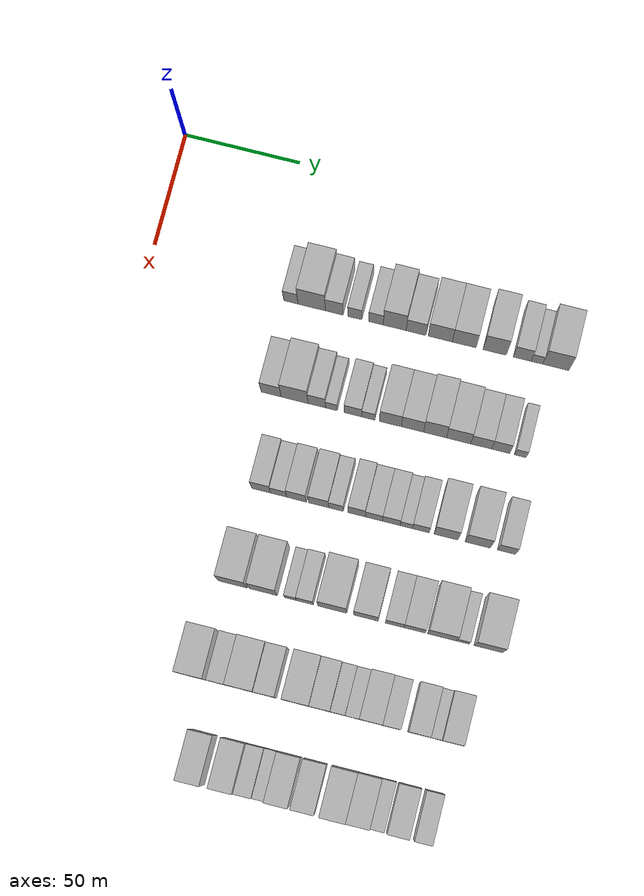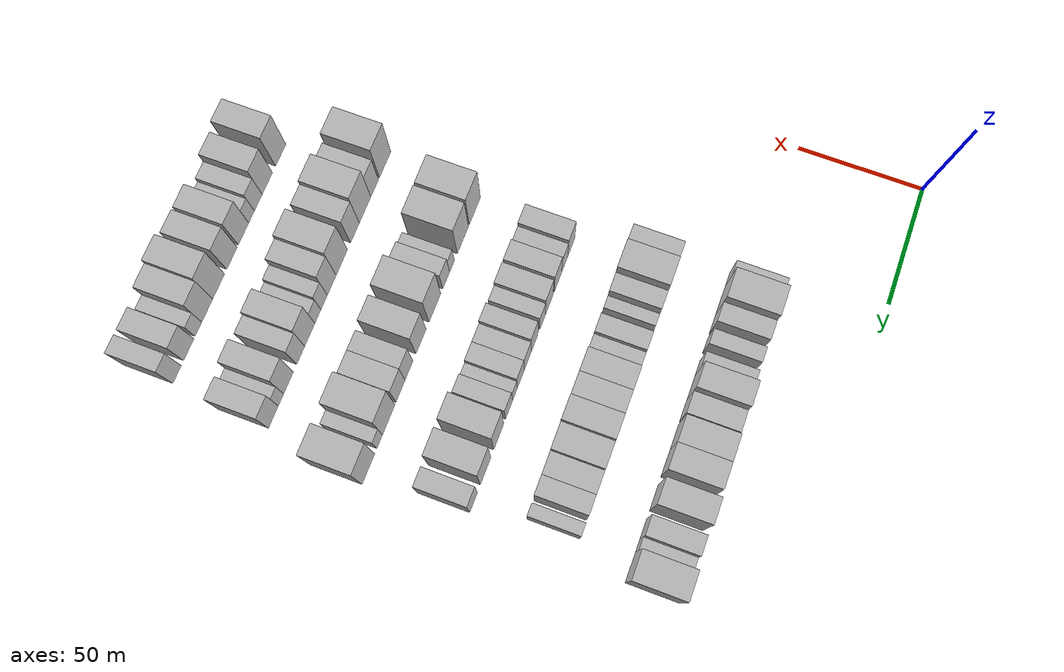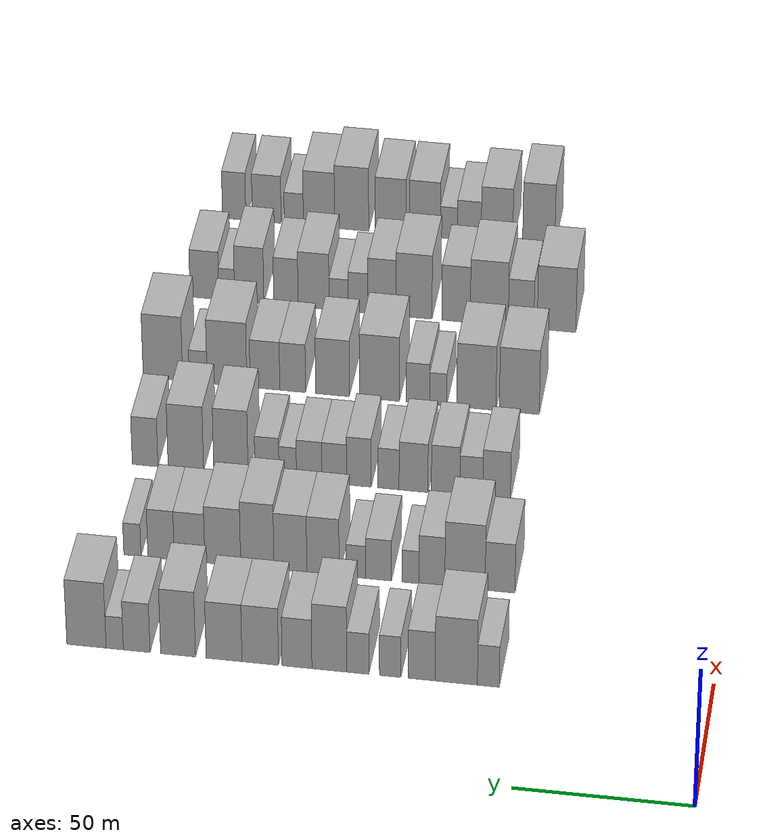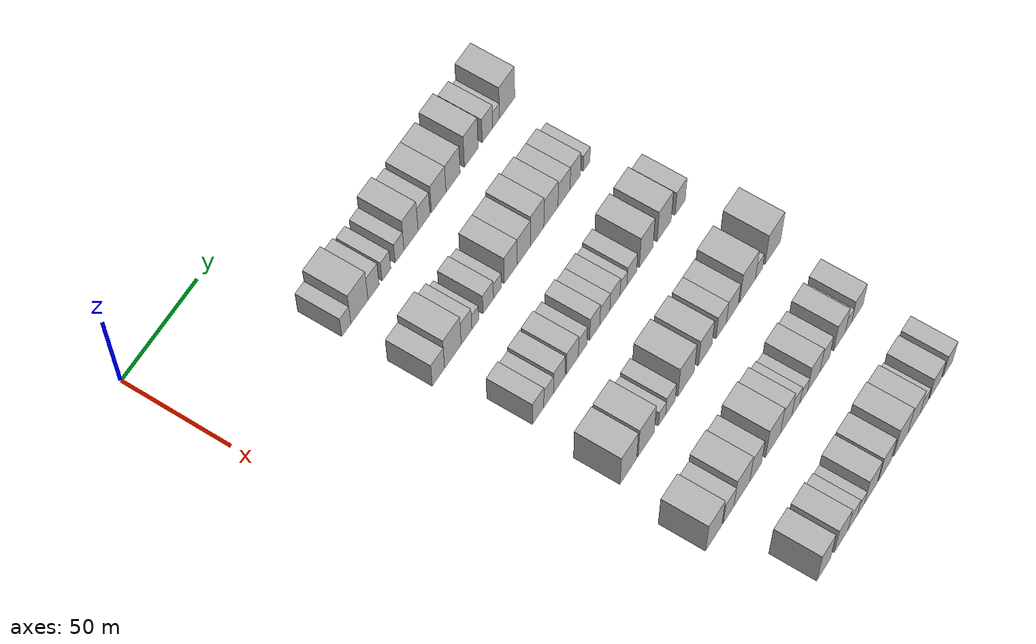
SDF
<sdf version="1.6">
 <world name="default">
  <model name="building_77">
   <static>1</static>
   <pose>50.0000 61.9833 0 0.000000 0.000000 0.000000</pose>
   <link name="link">
    <pose>0 0 7.50 0 0 0</pose>
    <collision name="collision"><geometry><box><size>20.0000 6.1368 15.0000</size></box></geometry></collision>
    <visual name="visual">
     <cast_shadows>0</cast_shadows>
     <geometry><box><size>20.0000 6.1368 15.0000</size></box></geometry>
     <material>
      <script>
       <uri>model://HANNAS_wall/materials/scripts</uri>
       <uri>model://HANNAS_wall/materials/textures</uri>
       <name>vrc/HANNAS_wall</name>
      </script>
     </material>
    </visual>
   </link>
  </model>
  <model name="building_78">
   <static>1</static>
   <pose>50.0000 70.9636 0 0.000000 0.000000 0.000000</pose>
   <link name="link">
    <pose>0 0 12.00 0 0 0</pose>
    <collision name="collision"><geometry><box><size>20.0000 11.8237 24.0000</size></box></geometry></collision>
    <visual name="visual">
     <cast_shadows>0</cast_shadows>
     <geometry><box><size>20.0000 11.8237 24.0000</size></box></geometry>
     <material>
      <script>
       <uri>model://HANNAS_wall/materials/scripts</uri>
       <uri>model://HANNAS_wall/materials/textures</uri>
       <name>vrc/HANNAS_wall</name>
      </script>
     </material>
    </visual>
   </link>
  </model>
  <model name="building_79">
   <static>1</static>
   <pose>50.0000 80.6957 0 0.000000 0.000000 0.000000</pose>
   <link name="link">
    <pose>0 0 9.00 0 0 0</pose>
    <collision name="collision"><geometry><box><size>20.0000 7.6407 18.0000</size></box></geometry></collision>
    <visual name="visual">
     <cast_shadows>0</cast_shadows>
     <geometry><box><size>20.0000 7.6407 18.0000</size></box></geometry>
     <material>
      <script>
       <uri>model://HANNAS_wall/materials/scripts</uri>
       <uri>model://HANNAS_wall/materials/textures</uri>
       <name>vrc/HANNAS_wall</name>
      </script>
     </material>
    </visual>
   </link>
  </model>
  <model name="building_80">
   <static>1</static>
   <pose>50.0000 89.5349 0 0.000000 0.000000 0.000000</pose>
   <link name="link">
    <pose>0 0 7.50 0 0 0</pose>
    <collision name="collision"><geometry><box><size>20.0000 6.0376 15.0000</size></box></geometry></collision>
    <visual name="visual">
     <cast_shadows>0</cast_shadows>
     <geometry><box><size>20.0000 6.0376 15.0000</size></box></geometry>
     <material>
      <script>
       <uri>model://HANNAS_wall/materials/scripts</uri>
       <uri>model://HANNAS_wall/materials/textures</uri>
       <name>vrc/HANNAS_wall</name>
      </script>
     </material>
    </visual>
   </link>
  </model>
  <model name="building_81">
   <static>1</static>
   <pose>50.0000 98.6666 0 0.000000 0.000000 0.000000</pose>
   <link name="link">
    <pose>0 0 7.50 0 0 0</pose>
    <collision name="collision"><geometry><box><size>20.0000 6.2260 15.0000</size></box></geometry></collision>
    <visual name="visual">
     <cast_shadows>0</cast_shadows>
     <geometry><box><size>20.0000 6.2260 15.0000</size></box></geometry>
     <material>
      <script>
       <uri>model://HANNAS_wall/materials/scripts</uri>
       <uri>model://HANNAS_wall/materials/textures</uri>
       <name>vrc/HANNAS_wall</name>
      </script>
     </material>
    </visual>
   </link>
  </model>
  <model name="building_82">
   <static>1</static>
   <pose>50.0000 106.6882 0 0.000000 0.000000 0.000000</pose>
   <link name="link">
    <pose>0 0 12.00 0 0 0</pose>
    <collision name="collision"><geometry><box><size>20.0000 9.8171 24.0000</size></box></geometry></collision>
    <visual name="visual">
     <cast_shadows>0</cast_shadows>
     <geometry><box><size>20.0000 9.8171 24.0000</size></box></geometry>
     <material>
      <script>
       <uri>model://HANNAS_wall/materials/scripts</uri>
       <uri>model://HANNAS_wall/materials/textures</uri>
       <name>vrc/HANNAS_wall</name>
      </script>
     </material>
    </visual>
   </link>
  </model>
  <model name="building_83">
   <static>1</static>
   <pose>50.0000 115.8136 0 0.000000 0.000000 0.000000</pose>
   <link name="link">
    <pose>0 0 9.00 0 0 0</pose>
    <collision name="collision"><geometry><box><size>20.0000 8.4338 18.0000</size></box></geometry></collision>
    <visual name="visual">
     <cast_shadows>0</cast_shadows>
     <geometry><box><size>20.0000 8.4338 18.0000</size></box></geometry>
     <material>
      <script>
       <uri>model://HANNAS_wall/materials/scripts</uri>
       <uri>model://HANNAS_wall/materials/textures</uri>
       <name>vrc/HANNAS_wall</name>
      </script>
     </material>
    </visual>
   </link>
  </model>
  <model name="building_84">
   <static>1</static>
   <pose>50.0000 126.2020 0 0.000000 0.000000 0.000000</pose>
   <link name="link">
    <pose>0 0 10.50 0 0 0</pose>
    <collision name="collision"><geometry><box><size>20.0000 10.3431 21.0000</size></box></geometry></collision>
    <visual name="visual">
     <cast_shadows>0</cast_shadows>
     <geometry><box><size>20.0000 10.3431 21.0000</size></box></geometry>
     <material>
      <script>
       <uri>model://HANNAS_wall/materials/scripts</uri>
       <uri>model://HANNAS_wall/materials/textures</uri>
       <name>vrc/HANNAS_wall</name>
      </script>
     </material>
    </visual>
   </link>
  </model>
  <model name="building_85">
   <static>1</static>
   <pose>50.0000 136.4455 0 0.000000 0.000000 0.000000</pose>
   <link name="link">
    <pose>0 0 10.50 0 0 0</pose>
    <collision name="collision"><geometry><box><size>20.0000 10.1439 21.0000</size></box></geometry></collision>
    <visual name="visual">
     <cast_shadows>0</cast_shadows>
     <geometry><box><size>20.0000 10.1439 21.0000</size></box></geometry>
     <material>
      <script>
       <uri>model://HANNAS_wall/materials/scripts</uri>
       <uri>model://HANNAS_wall/materials/textures</uri>
       <name>vrc/HANNAS_wall</name>
      </script>
     </material>
    </visual>
   </link>
  </model>
  <model name="building_86">
   <static>1</static>
   <pose>50.0000 149.4712 0 0.000000 0.000000 0.000000</pose>
   <link name="link">
    <pose>0 0 12.00 0 0 0</pose>
    <collision name="collision"><geometry><box><size>20.0000 9.9075 24.0000</size></box></geometry></collision>
    <visual name="visual">
     <cast_shadows>0</cast_shadows>
     <geometry><box><size>20.0000 9.9075 24.0000</size></box></geometry>
     <material>
      <script>
       <uri>model://HANNAS_wall/materials/scripts</uri>
       <uri>model://HANNAS_wall/materials/textures</uri>
       <name>vrc/HANNAS_wall</name>
      </script>
     </material>
    </visual>
   </link>
  </model>
  <model name="building_87">
   <static>1</static>
   <pose>50.0000 161.2207 0 0.000000 0.000000 0.000000</pose>
   <link name="link">
    <pose>0 0 9.00 0 0 0</pose>
    <collision name="collision"><geometry><box><size>20.0000 7.5915 18.0000</size></box></geometry></collision>
    <visual name="visual">
     <cast_shadows>0</cast_shadows>
     <geometry><box><size>20.0000 7.5915 18.0000</size></box></geometry>
     <material>
      <script>
       <uri>model://HANNAS_wall/materials/scripts</uri>
       <uri>model://HANNAS_wall/materials/textures</uri>
       <name>vrc/HANNAS_wall</name>
      </script>
     </material>
    </visual>
   </link>
  </model>
  <model name="building_88">
   <static>1</static>
   <pose>50.0000 167.4678 0 0.000000 0.000000 0.000000</pose>
   <link name="link">
    <pose>0 0 6.00 0 0 0</pose>
    <collision name="collision"><geometry><box><size>20.0000 4.9027 12.0000</size></box></geometry></collision>
    <visual name="visual">
     <cast_shadows>0</cast_shadows>
     <geometry><box><size>20.0000 4.9027 12.0000</size></box></geometry>
     <material>
      <script>
       <uri>model://HANNAS_wall/materials/scripts</uri>
       <uri>model://HANNAS_wall/materials/textures</uri>
       <name>vrc/HANNAS_wall</name>
      </script>
     </material>
    </visual>
   </link>
  </model>
  <model name="building_89">
   <static>1</static>
   <pose>50.0000 175.5026 0 0.000000 0.000000 0.000000</pose>
   <link name="link">
    <pose>0 0 12.00 0 0 0</pose>
    <collision name="collision"><geometry><box><size>20.0000 11.1671 24.0000</size></box></geometry></collision>
    <visual name="visual">
     <cast_shadows>0</cast_shadows>
     <geometry><box><size>20.0000 11.1671 24.0000</size></box></geometry>
     <material>
      <script>
       <uri>model://HANNAS_wall/materials/scripts</uri>
       <uri>model://HANNAS_wall/materials/textures</uri>
       <name>vrc/HANNAS_wall</name>
      </script>
     </material>
    </visual>
   </link>
  </model>
  <model name="building_209">
   <static>1</static>
   <pose>90.0000 64.0243 0 0.000000 0.000000 0.000000</pose>
   <link name="link">
    <pose>0 0 9.00 0 0 0</pose>
    <collision name="collision"><geometry><box><size>20.0000 8.5098 18.0000</size></box></geometry></collision>
    <visual name="visual">
     <cast_shadows>0</cast_shadows>
     <geometry><box><size>20.0000 8.5098 18.0000</size></box></geometry>
     <material>
      <script>
       <uri>model://HANNAS_wall/materials/scripts</uri>
       <uri>model://HANNAS_wall/materials/textures</uri>
       <name>vrc/HANNAS_wall</name>
      </script>
     </material>
    </visual>
   </link>
  </model>
  <model name="building_210">
   <static>1</static>
   <pose>90.0000 74.0491 0 0.000000 0.000000 0.000000</pose>
   <link name="link">
    <pose>0 0 12.00 0 0 0</pose>
    <collision name="collision"><geometry><box><size>20.0000 11.5398 24.0000</size></box></geometry></collision>
    <visual name="visual">
     <cast_shadows>0</cast_shadows>
     <geometry><box><size>20.0000 11.5398 24.0000</size></box></geometry>
     <material>
      <script>
       <uri>model://HANNAS_wall/materials/scripts</uri>
       <uri>model://HANNAS_wall/materials/textures</uri>
       <name>vrc/HANNAS_wall</name>
      </script>
     </material>
    </visual>
   </link>
  </model>
  <model name="building_211">
   <static>1</static>
   <pose>90.0000 83.5195 0 0.000000 0.000000 0.000000</pose>
   <link name="link">
    <pose>0 0 9.00 0 0 0</pose>
    <collision name="collision"><geometry><box><size>20.0000 7.4012 18.0000</size></box></geometry></collision>
    <visual name="visual">
     <cast_shadows>0</cast_shadows>
     <geometry><box><size>20.0000 7.4012 18.0000</size></box></geometry>
     <material>
      <script>
       <uri>model://HANNAS_wall/materials/scripts</uri>
       <uri>model://HANNAS_wall/materials/textures</uri>
       <name>vrc/HANNAS_wall</name>
      </script>
     </material>
    </visual>
   </link>
  </model>
  <model name="building_212">
   <static>1</static>
   <pose>90.0000 89.6690 0 0.000000 0.000000 0.000000</pose>
   <link name="link">
    <pose>0 0 6.00 0 0 0</pose>
    <collision name="collision"><geometry><box><size>20.0000 4.8977 12.0000</size></box></geometry></collision>
    <visual name="visual">
     <cast_shadows>0</cast_shadows>
     <geometry><box><size>20.0000 4.8977 12.0000</size></box></geometry>
     <material>
      <script>
       <uri>model://HANNAS_wall/materials/scripts</uri>
       <uri>model://HANNAS_wall/materials/textures</uri>
       <name>vrc/HANNAS_wall</name>
      </script>
     </material>
    </visual>
   </link>
  </model>
  <model name="building_213">
   <static>1</static>
   <pose>90.0000 98.8451 0 0.000000 0.000000 0.000000</pose>
   <link name="link">
    <pose>0 0 7.50 0 0 0</pose>
    <collision name="collision"><geometry><box><size>20.0000 7.4545 15.0000</size></box></geometry></collision>
    <visual name="visual">
     <cast_shadows>0</cast_shadows>
     <geometry><box><size>20.0000 7.4545 15.0000</size></box></geometry>
     <material>
      <script>
       <uri>model://HANNAS_wall/materials/scripts</uri>
       <uri>model://HANNAS_wall/materials/textures</uri>
       <name>vrc/HANNAS_wall</name>
      </script>
     </material>
    </visual>
   </link>
  </model>
  <model name="building_214">
   <static>1</static>
   <pose>90.0000 105.3590 0 0.000000 0.000000 0.000000</pose>
   <link name="link">
    <pose>0 0 6.00 0 0 0</pose>
    <collision name="collision"><geometry><box><size>20.0000 5.5733 12.0000</size></box></geometry></collision>
    <visual name="visual">
     <cast_shadows>0</cast_shadows>
     <geometry><box><size>20.0000 5.5733 12.0000</size></box></geometry>
     <material>
      <script>
       <uri>model://HANNAS_wall/materials/scripts</uri>
       <uri>model://HANNAS_wall/materials/textures</uri>
       <name>vrc/HANNAS_wall</name>
      </script>
     </material>
    </visual>
   </link>
  </model>
  <model name="building_215">
   <static>1</static>
   <pose>90.0000 114.7948 0 0.000000 0.000000 0.000000</pose>
   <link name="link">
    <pose>0 0 10.50 0 0 0</pose>
    <collision name="collision"><geometry><box><size>20.0000 9.2982 21.0000</size></box></geometry></collision>
    <visual name="visual">
     <cast_shadows>0</cast_shadows>
     <geometry><box><size>20.0000 9.2982 21.0000</size></box></geometry>
     <material>
      <script>
       <uri>model://HANNAS_wall/materials/scripts</uri>
       <uri>model://HANNAS_wall/materials/textures</uri>
       <name>vrc/HANNAS_wall</name>
      </script>
     </material>
    </visual>
   </link>
  </model>
  <model name="building_216">
   <static>1</static>
   <pose>90.0000 124.1736 0 0.000000 0.000000 0.000000</pose>
   <link name="link">
    <pose>0 0 10.50 0 0 0</pose>
    <collision name="collision"><geometry><box><size>20.0000 9.4594 21.0000</size></box></geometry></collision>
    <visual name="visual">
     <cast_shadows>0</cast_shadows>
     <geometry><box><size>20.0000 9.4594 21.0000</size></box></geometry>
     <material>
      <script>
       <uri>model://HANNAS_wall/materials/scripts</uri>
       <uri>model://HANNAS_wall/materials/textures</uri>
       <name>vrc/HANNAS_wall</name>
      </script>
     </material>
    </visual>
   </link>
  </model>
  <model name="building_217">
   <static>1</static>
   <pose>90.0000 133.7202 0 0.000000 0.000000 0.000000</pose>
   <link name="link">
    <pose>0 0 12.00 0 0 0</pose>
    <collision name="collision"><geometry><box><size>20.0000 9.6339 24.0000</size></box></geometry></collision>
    <visual name="visual">
     <cast_shadows>0</cast_shadows>
     <geometry><box><size>20.0000 9.6339 24.0000</size></box></geometry>
     <material>
      <script>
       <uri>model://HANNAS_wall/materials/scripts</uri>
       <uri>model://HANNAS_wall/materials/textures</uri>
       <name>vrc/HANNAS_wall</name>
      </script>
     </material>
    </visual>
   </link>
  </model>
  <model name="building_218">
   <static>1</static>
   <pose>90.0000 143.7049 0 0.000000 0.000000 0.000000</pose>
   <link name="link">
    <pose>0 0 10.50 0 0 0</pose>
    <collision name="collision"><geometry><box><size>20.0000 10.3356 21.0000</size></box></geometry></collision>
    <visual name="visual">
     <cast_shadows>0</cast_shadows>
     <geometry><box><size>20.0000 10.3356 21.0000</size></box></geometry>
     <material>
      <script>
       <uri>model://HANNAS_wall/materials/scripts</uri>
       <uri>model://HANNAS_wall/materials/textures</uri>
       <name>vrc/HANNAS_wall</name>
      </script>
     </material>
    </visual>
   </link>
  </model>
  <model name="building_219">
   <static>1</static>
   <pose>90.0000 153.2958 0 0.000000 0.000000 0.000000</pose>
   <link name="link">
    <pose>0 0 9.00 0 0 0</pose>
    <collision name="collision"><geometry><box><size>20.0000 8.8462 18.0000</size></box></geometry></collision>
    <visual name="visual">
     <cast_shadows>0</cast_shadows>
     <geometry><box><size>20.0000 8.8462 18.0000</size></box></geometry>
     <material>
      <script>
       <uri>model://HANNAS_wall/materials/scripts</uri>
       <uri>model://HANNAS_wall/materials/textures</uri>
       <name>vrc/HANNAS_wall</name>
      </script>
     </material>
    </visual>
   </link>
  </model>
  <model name="building_220">
   <static>1</static>
   <pose>90.0000 161.5428 0 0.000000 0.000000 0.000000</pose>
   <link name="link">
    <pose>0 0 9.00 0 0 0</pose>
    <collision name="collision"><geometry><box><size>20.0000 7.6477 18.0000</size></box></geometry></collision>
    <visual name="visual">
     <cast_shadows>0</cast_shadows>
     <geometry><box><size>20.0000 7.6477 18.0000</size></box></geometry>
     <material>
      <script>
       <uri>model://HANNAS_wall/materials/scripts</uri>
       <uri>model://HANNAS_wall/materials/textures</uri>
       <name>vrc/HANNAS_wall</name>
      </script>
     </material>
    </visual>
   </link>
  </model>
  <model name="building_221">
   <static>1</static>
   <pose>90.0000 169.8466 0 0.000000 0.000000 0.000000</pose>
   <link name="link">
    <pose>0 0 6.00 0 0 0</pose>
    <collision name="collision"><geometry><box><size>20.0000 4.9598 12.0000</size></box></geometry></collision>
    <visual name="visual">
     <cast_shadows>0</cast_shadows>
     <geometry><box><size>20.0000 4.9598 12.0000</size></box></geometry>
     <material>
      <script>
       <uri>model://HANNAS_wall/materials/scripts</uri>
       <uri>model://HANNAS_wall/materials/textures</uri>
       <name>vrc/HANNAS_wall</name>
      </script>
     </material>
    </visual>
   </link>
  </model>
  <model name="building_352">
   <static>1</static>
   <pose>130.0000 70.3549 0 0.000000 0.000000 0.000000</pose>
   <link name="link">
    <pose>0 0 9.00 0 0 0</pose>
    <collision name="collision"><geometry><box><size>20.0000 7.9954 18.0000</size></box></geometry></collision>
    <visual name="visual">
     <cast_shadows>0</cast_shadows>
     <geometry><box><size>20.0000 7.9954 18.0000</size></box></geometry>
     <material>
      <script>
       <uri>model://HANNAS_wall/materials/scripts</uri>
       <uri>model://HANNAS_wall/materials/textures</uri>
       <name>vrc/HANNAS_wall</name>
      </script>
     </material>
    </visual>
   </link>
  </model>
  <model name="building_353">
   <static>1</static>
   <pose>130.0000 77.7285 0 0.000000 0.000000 0.000000</pose>
   <link name="link">
    <pose>0 0 7.50 0 0 0</pose>
    <collision name="collision"><geometry><box><size>20.0000 6.7518 15.0000</size></box></geometry></collision>
    <visual name="visual">
     <cast_shadows>0</cast_shadows>
     <geometry><box><size>20.0000 6.7518 15.0000</size></box></geometry>
     <material>
      <script>
       <uri>model://HANNAS_wall/materials/scripts</uri>
       <uri>model://HANNAS_wall/materials/textures</uri>
       <name>vrc/HANNAS_wall</name>
      </script>
     </material>
    </visual>
   </link>
  </model>
  <model name="building_354">
   <static>1</static>
   <pose>130.0000 85.2510 0 0.000000 0.000000 0.000000</pose>
   <link name="link">
    <pose>0 0 9.00 0 0 0</pose>
    <collision name="collision"><geometry><box><size>20.0000 8.2933 18.0000</size></box></geometry></collision>
    <visual name="visual">
     <cast_shadows>0</cast_shadows>
     <geometry><box><size>20.0000 8.2933 18.0000</size></box></geometry>
     <material>
      <script>
       <uri>model://HANNAS_wall/materials/scripts</uri>
       <uri>model://HANNAS_wall/materials/textures</uri>
       <name>vrc/HANNAS_wall</name>
      </script>
     </material>
    </visual>
   </link>
  </model>
  <model name="building_355">
   <static>1</static>
   <pose>130.0000 94.6221 0 0.000000 0.000000 0.000000</pose>
   <link name="link">
    <pose>0 0 9.00 0 0 0</pose>
    <collision name="collision"><geometry><box><size>20.0000 8.4489 18.0000</size></box></geometry></collision>
    <visual name="visual">
     <cast_shadows>0</cast_shadows>
     <geometry><box><size>20.0000 8.4489 18.0000</size></box></geometry>
     <material>
      <script>
       <uri>model://HANNAS_wall/materials/scripts</uri>
       <uri>model://HANNAS_wall/materials/textures</uri>
       <name>vrc/HANNAS_wall</name>
      </script>
     </material>
    </visual>
   </link>
  </model>
  <model name="building_356">
   <static>1</static>
   <pose>130.0000 101.9207 0 0.000000 0.000000 0.000000</pose>
   <link name="link">
    <pose>0 0 7.50 0 0 0</pose>
    <collision name="collision"><geometry><box><size>20.0000 6.1483 15.0000</size></box></geometry></collision>
    <visual name="visual">
     <cast_shadows>0</cast_shadows>
     <geometry><box><size>20.0000 6.1483 15.0000</size></box></geometry>
     <material>
      <script>
       <uri>model://HANNAS_wall/materials/scripts</uri>
       <uri>model://HANNAS_wall/materials/textures</uri>
       <name>vrc/HANNAS_wall</name>
      </script>
     </material>
    </visual>
   </link>
  </model>
  <model name="building_357">
   <static>1</static>
   <pose>130.0000 110.6044 0 0.000000 0.000000 0.000000</pose>
   <link name="link">
    <pose>0 0 9.00 0 0 0</pose>
    <collision name="collision"><geometry><box><size>20.0000 7.2192 18.0000</size></box></geometry></collision>
    <visual name="visual">
     <cast_shadows>0</cast_shadows>
     <geometry><box><size>20.0000 7.2192 18.0000</size></box></geometry>
     <material>
      <script>
       <uri>model://HANNAS_wall/materials/scripts</uri>
       <uri>model://HANNAS_wall/materials/textures</uri>
       <name>vrc/HANNAS_wall</name>
      </script>
     </material>
    </visual>
   </link>
  </model>
  <model name="building_358">
   <static>1</static>
   <pose>130.0000 117.8459 0 0.000000 0.000000 0.000000</pose>
   <link name="link">
    <pose>0 0 7.50 0 0 0</pose>
    <collision name="collision"><geometry><box><size>20.0000 7.2637 15.0000</size></box></geometry></collision>
    <visual name="visual">
     <cast_shadows>0</cast_shadows>
     <geometry><box><size>20.0000 7.2637 15.0000</size></box></geometry>
     <material>
      <script>
       <uri>model://HANNAS_wall/materials/scripts</uri>
       <uri>model://HANNAS_wall/materials/textures</uri>
       <name>vrc/HANNAS_wall</name>
      </script>
     </material>
    </visual>
   </link>
  </model>
  <model name="building_359">
   <static>1</static>
   <pose>130.0000 125.1880 0 0.000000 0.000000 0.000000</pose>
   <link name="link">
    <pose>0 0 7.50 0 0 0</pose>
    <collision name="collision"><geometry><box><size>20.0000 7.4205 15.0000</size></box></geometry></collision>
    <visual name="visual">
     <cast_shadows>0</cast_shadows>
     <geometry><box><size>20.0000 7.4205 15.0000</size></box></geometry>
     <material>
      <script>
       <uri>model://HANNAS_wall/materials/scripts</uri>
       <uri>model://HANNAS_wall/materials/textures</uri>
       <name>vrc/HANNAS_wall</name>
      </script>
     </material>
    </visual>
   </link>
  </model>
  <model name="building_360">
   <static>1</static>
   <pose>130.0000 131.4701 0 0.000000 0.000000 0.000000</pose>
   <link name="link">
    <pose>0 0 6.00 0 0 0</pose>
    <collision name="collision"><geometry><box><size>20.0000 5.1437 12.0000</size></box></geometry></collision>
    <visual name="visual">
     <cast_shadows>0</cast_shadows>
     <geometry><box><size>20.0000 5.1437 12.0000</size></box></geometry>
     <material>
      <script>
       <uri>model://HANNAS_wall/materials/scripts</uri>
       <uri>model://HANNAS_wall/materials/textures</uri>
       <name>vrc/HANNAS_wall</name>
      </script>
     </material>
    </visual>
   </link>
  </model>
  <model name="building_361">
   <static>1</static>
   <pose>130.0000 137.5808 0 0.000000 0.000000 0.000000</pose>
   <link name="link">
    <pose>0 0 7.50 0 0 0</pose>
    <collision name="collision"><geometry><box><size>20.0000 7.0778 15.0000</size></box></geometry></collision>
    <visual name="visual">
     <cast_shadows>0</cast_shadows>
     <geometry><box><size>20.0000 7.0778 15.0000</size></box></geometry>
     <material>
      <script>
       <uri>model://HANNAS_wall/materials/scripts</uri>
       <uri>model://HANNAS_wall/materials/textures</uri>
       <name>vrc/HANNAS_wall</name>
      </script>
     </material>
    </visual>
   </link>
  </model>
  <model name="building_362">
   <static>1</static>
   <pose>130.0000 148.1693 0 0.000000 0.000000 0.000000</pose>
   <link name="link">
    <pose>0 0 12.00 0 0 0</pose>
    <collision name="collision"><geometry><box><size>20.0000 10.0994 24.0000</size></box></geometry></collision>
    <visual name="visual">
     <cast_shadows>0</cast_shadows>
     <geometry><box><size>20.0000 10.0994 24.0000</size></box></geometry>
     <material>
      <script>
       <uri>model://HANNAS_wall/materials/scripts</uri>
       <uri>model://HANNAS_wall/materials/textures</uri>
       <name>vrc/HANNAS_wall</name>
      </script>
     </material>
    </visual>
   </link>
  </model>
  <model name="building_363">
   <static>1</static>
   <pose>130.0000 161.4615 0 0.000000 0.000000 0.000000</pose>
   <link name="link">
    <pose>0 0 12.00 0 0 0</pose>
    <collision name="collision"><geometry><box><size>20.0000 10.4849 24.0000</size></box></geometry></collision>
    <visual name="visual">
     <cast_shadows>0</cast_shadows>
     <geometry><box><size>20.0000 10.4849 24.0000</size></box></geometry>
     <material>
      <script>
       <uri>model://HANNAS_wall/materials/scripts</uri>
       <uri>model://HANNAS_wall/materials/textures</uri>
       <name>vrc/HANNAS_wall</name>
      </script>
     </material>
    </visual>
   </link>
  </model>
  <model name="building_364">
   <static>1</static>
   <pose>130.0000 173.4905 0 0.000000 0.000000 0.000000</pose>
   <link name="link">
    <pose>0 0 9.00 0 0 0</pose>
    <collision name="collision"><geometry><box><size>20.0000 7.5732 18.0000</size></box></geometry></collision>
    <visual name="visual">
     <cast_shadows>0</cast_shadows>
     <geometry><box><size>20.0000 7.5732 18.0000</size></box></geometry>
     <material>
      <script>
       <uri>model://HANNAS_wall/materials/scripts</uri>
       <uri>model://HANNAS_wall/materials/textures</uri>
       <name>vrc/HANNAS_wall</name>
      </script>
     </material>
    </visual>
   </link>
  </model>
  <model name="building_493">
   <static>1</static>
   <pose>170.0000 68.9967 0 0.000000 0.000000 0.000000</pose>
   <link name="link">
    <pose>0 0 12.00 0 0 0</pose>
    <collision name="collision"><geometry><box><size>20.0000 11.8665 24.0000</size></box></geometry></collision>
    <visual name="visual">
     <cast_shadows>0</cast_shadows>
     <geometry><box><size>20.0000 11.8665 24.0000</size></box></geometry>
     <material>
      <script>
       <uri>model://HANNAS_wall/materials/scripts</uri>
       <uri>model://HANNAS_wall/materials/textures</uri>
       <name>vrc/HANNAS_wall</name>
      </script>
     </material>
    </visual>
   </link>
  </model>
  <model name="building_494">
   <static>1</static>
   <pose>170.0000 81.7453 0 0.000000 0.000000 0.000000</pose>
   <link name="link">
    <pose>0 0 12.00 0 0 0</pose>
    <collision name="collision"><geometry><box><size>20.0000 11.6307 24.0000</size></box></geometry></collision>
    <visual name="visual">
     <cast_shadows>0</cast_shadows>
     <geometry><box><size>20.0000 11.6307 24.0000</size></box></geometry>
     <material>
      <script>
       <uri>model://HANNAS_wall/materials/scripts</uri>
       <uri>model://HANNAS_wall/materials/textures</uri>
       <name>vrc/HANNAS_wall</name>
      </script>
     </material>
    </visual>
   </link>
  </model>
  <model name="building_495">
   <static>1</static>
   <pose>170.0000 93.1016 0 0.000000 0.000000 0.000000</pose>
   <link name="link">
    <pose>0 0 6.00 0 0 0</pose>
    <collision name="collision"><geometry><box><size>20.0000 5.0820 12.0000</size></box></geometry></collision>
    <visual name="visual">
     <cast_shadows>0</cast_shadows>
     <geometry><box><size>20.0000 5.0820 12.0000</size></box></geometry>
     <material>
      <script>
       <uri>model://HANNAS_wall/materials/scripts</uri>
       <uri>model://HANNAS_wall/materials/textures</uri>
       <name>vrc/HANNAS_wall</name>
      </script>
     </material>
    </visual>
   </link>
  </model>
  <model name="building_496">
   <static>1</static>
   <pose>170.0000 99.1411 0 0.000000 0.000000 0.000000</pose>
   <link name="link">
    <pose>0 0 7.50 0 0 0</pose>
    <collision name="collision"><geometry><box><size>20.0000 6.9969 15.0000</size></box></geometry></collision>
    <visual name="visual">
     <cast_shadows>0</cast_shadows>
     <geometry><box><size>20.0000 6.9969 15.0000</size></box></geometry>
     <material>
      <script>
       <uri>model://HANNAS_wall/materials/scripts</uri>
       <uri>model://HANNAS_wall/materials/textures</uri>
       <name>vrc/HANNAS_wall</name>
      </script>
     </material>
    </visual>
   </link>
  </model>
  <model name="building_497">
   <static>1</static>
   <pose>170.0000 110.6026 0 0.000000 0.000000 0.000000</pose>
   <link name="link">
    <pose>0 0 12.00 0 0 0</pose>
    <collision name="collision"><geometry><box><size>20.0000 11.9261 24.0000</size></box></geometry></collision>
    <visual name="visual">
     <cast_shadows>0</cast_shadows>
     <geometry><box><size>20.0000 11.9261 24.0000</size></box></geometry>
     <material>
      <script>
       <uri>model://HANNAS_wall/materials/scripts</uri>
       <uri>model://HANNAS_wall/materials/textures</uri>
       <name>vrc/HANNAS_wall</name>
      </script>
     </material>
    </visual>
   </link>
  </model>
  <model name="building_498">
   <static>1</static>
   <pose>170.0000 124.6158 0 0.000000 0.000000 0.000000</pose>
   <link name="link">
    <pose>0 0 10.50 0 0 0</pose>
    <collision name="collision"><geometry><box><size>20.0000 10.1004 21.0000</size></box></geometry></collision>
    <visual name="visual">
     <cast_shadows>0</cast_shadows>
     <geometry><box><size>20.0000 10.1004 21.0000</size></box></geometry>
     <material>
      <script>
       <uri>model://HANNAS_wall/materials/scripts</uri>
       <uri>model://HANNAS_wall/materials/textures</uri>
       <name>vrc/HANNAS_wall</name>
      </script>
     </material>
    </visual>
   </link>
  </model>
  <model name="building_499">
   <static>1</static>
   <pose>170.0000 136.5290 0 0.000000 0.000000 0.000000</pose>
   <link name="link">
    <pose>0 0 9.00 0 0 0</pose>
    <collision name="collision"><geometry><box><size>20.0000 7.7260 18.0000</size></box></geometry></collision>
    <visual name="visual">
     <cast_shadows>0</cast_shadows>
     <geometry><box><size>20.0000 7.7260 18.0000</size></box></geometry>
     <material>
      <script>
       <uri>model://HANNAS_wall/materials/scripts</uri>
       <uri>model://HANNAS_wall/materials/textures</uri>
       <name>vrc/HANNAS_wall</name>
      </script>
     </material>
    </visual>
   </link>
  </model>
  <model name="building_500">
   <static>1</static>
   <pose>170.0000 144.8285 0 0.000000 0.000000 0.000000</pose>
   <link name="link">
    <pose>0 0 9.00 0 0 0</pose>
    <collision name="collision"><geometry><box><size>20.0000 8.8732 18.0000</size></box></geometry></collision>
    <visual name="visual">
     <cast_shadows>0</cast_shadows>
     <geometry><box><size>20.0000 8.8732 18.0000</size></box></geometry>
     <material>
      <script>
       <uri>model://HANNAS_wall/materials/scripts</uri>
       <uri>model://HANNAS_wall/materials/textures</uri>
       <name>vrc/HANNAS_wall</name>
      </script>
     </material>
    </visual>
   </link>
  </model>
  <model name="building_501">
   <static>1</static>
   <pose>170.0000 156.2308 0 0.000000 0.000000 0.000000</pose>
   <link name="link">
    <pose>0 0 12.00 0 0 0</pose>
    <collision name="collision"><geometry><box><size>20.0000 11.9314 24.0000</size></box></geometry></collision>
    <visual name="visual">
     <cast_shadows>0</cast_shadows>
     <geometry><box><size>20.0000 11.9314 24.0000</size></box></geometry>
     <material>
      <script>
       <uri>model://HANNAS_wall/materials/scripts</uri>
       <uri>model://HANNAS_wall/materials/textures</uri>
       <name>vrc/HANNAS_wall</name>
      </script>
     </material>
    </visual>
   </link>
  </model>
  <model name="building_502">
   <static>1</static>
   <pose>170.0000 164.8690 0 0.000000 0.000000 0.000000</pose>
   <link name="link">
    <pose>0 0 6.00 0 0 0</pose>
    <collision name="collision"><geometry><box><size>20.0000 5.3451 12.0000</size></box></geometry></collision>
    <visual name="visual">
     <cast_shadows>0</cast_shadows>
     <geometry><box><size>20.0000 5.3451 12.0000</size></box></geometry>
     <material>
      <script>
       <uri>model://HANNAS_wall/materials/scripts</uri>
       <uri>model://HANNAS_wall/materials/textures</uri>
       <name>vrc/HANNAS_wall</name>
      </script>
     </material>
    </visual>
   </link>
  </model>
  <model name="building_503">
   <static>1</static>
   <pose>170.0000 175.4649 0 0.000000 0.000000 0.000000</pose>
   <link name="link">
    <pose>0 0 12.00 0 0 0</pose>
    <collision name="collision"><geometry><box><size>20.0000 11.8467 24.0000</size></box></geometry></collision>
    <visual name="visual">
     <cast_shadows>0</cast_shadows>
     <geometry><box><size>20.0000 11.8467 24.0000</size></box></geometry>
     <material>
      <script>
       <uri>model://HANNAS_wall/materials/scripts</uri>
       <uri>model://HANNAS_wall/materials/textures</uri>
       <name>vrc/HANNAS_wall</name>
      </script>
     </material>
    </visual>
   </link>
  </model>
  <model name="building_618">
   <static>1</static>
   <pose>210.0000 63.0101 0 0.000000 0.000000 0.000000</pose>
   <link name="link">
    <pose>0 0 12.00 0 0 0</pose>
    <collision name="collision"><geometry><box><size>20.0000 11.6503 24.0000</size></box></geometry></collision>
    <visual name="visual">
     <cast_shadows>0</cast_shadows>
     <geometry><box><size>20.0000 11.6503 24.0000</size></box></geometry>
     <material>
      <script>
       <uri>model://HANNAS_wall/materials/scripts</uri>
       <uri>model://HANNAS_wall/materials/textures</uri>
       <name>vrc/HANNAS_wall</name>
      </script>
     </material>
    </visual>
   </link>
  </model>
  <model name="building_619">
   <static>1</static>
   <pose>210.0000 73.6987 0 0.000000 0.000000 0.000000</pose>
   <link name="link">
    <pose>0 0 9.00 0 0 0</pose>
    <collision name="collision"><geometry><box><size>20.0000 7.7267 18.0000</size></box></geometry></collision>
    <visual name="visual">
     <cast_shadows>0</cast_shadows>
     <geometry><box><size>20.0000 7.7267 18.0000</size></box></geometry>
     <material>
      <script>
       <uri>model://HANNAS_wall/materials/scripts</uri>
       <uri>model://HANNAS_wall/materials/textures</uri>
       <name>vrc/HANNAS_wall</name>
      </script>
     </material>
    </visual>
   </link>
  </model>
  <model name="building_620">
   <static>1</static>
   <pose>210.0000 83.3041 0 0.000000 0.000000 0.000000</pose>
   <link name="link">
    <pose>0 0 12.00 0 0 0</pose>
    <collision name="collision"><geometry><box><size>20.0000 11.4842 24.0000</size></box></geometry></collision>
    <visual name="visual">
     <cast_shadows>0</cast_shadows>
     <geometry><box><size>20.0000 11.4842 24.0000</size></box></geometry>
     <material>
      <script>
       <uri>model://HANNAS_wall/materials/scripts</uri>
       <uri>model://HANNAS_wall/materials/textures</uri>
       <name>vrc/HANNAS_wall</name>
      </script>
     </material>
    </visual>
   </link>
  </model>
  <model name="building_621">
   <static>1</static>
   <pose>210.0000 93.3498 0 0.000000 0.000000 0.000000</pose>
   <link name="link">
    <pose>0 0 10.50 0 0 0</pose>
    <collision name="collision"><geometry><box><size>20.0000 8.6072 21.0000</size></box></geometry></collision>
    <visual name="visual">
     <cast_shadows>0</cast_shadows>
     <geometry><box><size>20.0000 8.6072 21.0000</size></box></geometry>
     <material>
      <script>
       <uri>model://HANNAS_wall/materials/scripts</uri>
       <uri>model://HANNAS_wall/materials/textures</uri>
       <name>vrc/HANNAS_wall</name>
      </script>
     </material>
    </visual>
   </link>
  </model>
  <model name="building_622">
   <static>1</static>
   <pose>210.0000 106.1419 0 0.000000 0.000000 0.000000</pose>
   <link name="link">
    <pose>0 0 12.00 0 0 0</pose>
    <collision name="collision"><geometry><box><size>20.0000 10.9770 24.0000</size></box></geometry></collision>
    <visual name="visual">
     <cast_shadows>0</cast_shadows>
     <geometry><box><size>20.0000 10.9770 24.0000</size></box></geometry>
     <material>
      <script>
       <uri>model://HANNAS_wall/materials/scripts</uri>
       <uri>model://HANNAS_wall/materials/textures</uri>
       <name>vrc/HANNAS_wall</name>
      </script>
     </material>
    </visual>
   </link>
  </model>
  <model name="building_623">
   <static>1</static>
   <pose>210.0000 115.8581 0 0.000000 0.000000 0.000000</pose>
   <link name="link">
    <pose>0 0 10.50 0 0 0</pose>
    <collision name="collision"><geometry><box><size>20.0000 8.4554 21.0000</size></box></geometry></collision>
    <visual name="visual">
     <cast_shadows>0</cast_shadows>
     <geometry><box><size>20.0000 8.4554 21.0000</size></box></geometry>
     <material>
      <script>
       <uri>model://HANNAS_wall/materials/scripts</uri>
       <uri>model://HANNAS_wall/materials/textures</uri>
       <name>vrc/HANNAS_wall</name>
      </script>
     </material>
    </visual>
   </link>
  </model>
  <model name="building_624">
   <static>1</static>
   <pose>210.0000 123.1290 0 0.000000 0.000000 0.000000</pose>
   <link name="link">
    <pose>0 0 7.50 0 0 0</pose>
    <collision name="collision"><geometry><box><size>20.0000 6.0864 15.0000</size></box></geometry></collision>
    <visual name="visual">
     <cast_shadows>0</cast_shadows>
     <geometry><box><size>20.0000 6.0864 15.0000</size></box></geometry>
     <material>
      <script>
       <uri>model://HANNAS_wall/materials/scripts</uri>
       <uri>model://HANNAS_wall/materials/textures</uri>
       <name>vrc/HANNAS_wall</name>
      </script>
     </material>
    </visual>
   </link>
  </model>
  <model name="building_625">
   <static>1</static>
   <pose>210.0000 129.0493 0 0.000000 0.000000 0.000000</pose>
   <link name="link">
    <pose>0 0 6.00 0 0 0</pose>
    <collision name="collision"><geometry><box><size>20.0000 5.7543 12.0000</size></box></geometry></collision>
    <visual name="visual">
     <cast_shadows>0</cast_shadows>
     <geometry><box><size>20.0000 5.7543 12.0000</size></box></geometry>
     <material>
      <script>
       <uri>model://HANNAS_wall/materials/scripts</uri>
       <uri>model://HANNAS_wall/materials/textures</uri>
       <name>vrc/HANNAS_wall</name>
      </script>
     </material>
    </visual>
   </link>
  </model>
  <model name="building_626">
   <static>1</static>
   <pose>210.0000 136.6495 0 0.000000 0.000000 0.000000</pose>
   <link name="link">
    <pose>0 0 10.50 0 0 0</pose>
    <collision name="collision"><geometry><box><size>20.0000 9.4461 21.0000</size></box></geometry></collision>
    <visual name="visual">
     <cast_shadows>0</cast_shadows>
     <geometry><box><size>20.0000 9.4461 21.0000</size></box></geometry>
     <material>
      <script>
       <uri>model://HANNAS_wall/materials/scripts</uri>
       <uri>model://HANNAS_wall/materials/textures</uri>
       <name>vrc/HANNAS_wall</name>
      </script>
     </material>
    </visual>
   </link>
  </model>
  <model name="building_627">
   <static>1</static>
   <pose>210.0000 145.0912 0 0.000000 0.000000 0.000000</pose>
   <link name="link">
    <pose>0 0 9.00 0 0 0</pose>
    <collision name="collision"><geometry><box><size>20.0000 7.4373 18.0000</size></box></geometry></collision>
    <visual name="visual">
     <cast_shadows>0</cast_shadows>
     <geometry><box><size>20.0000 7.4373 18.0000</size></box></geometry>
     <material>
      <script>
       <uri>model://HANNAS_wall/materials/scripts</uri>
       <uri>model://HANNAS_wall/materials/textures</uri>
       <name>vrc/HANNAS_wall</name>
      </script>
     </material>
    </visual>
   </link>
  </model>
  <model name="building_628">
   <static>1</static>
   <pose>210.0000 156.2733 0 0.000000 0.000000 0.000000</pose>
   <link name="link">
    <pose>0 0 10.50 0 0 0</pose>
    <collision name="collision"><geometry><box><size>20.0000 8.9269 21.0000</size></box></geometry></collision>
    <visual name="visual">
     <cast_shadows>0</cast_shadows>
     <geometry><box><size>20.0000 8.9269 21.0000</size></box></geometry>
     <material>
      <script>
       <uri>model://HANNAS_wall/materials/scripts</uri>
       <uri>model://HANNAS_wall/materials/textures</uri>
       <name>vrc/HANNAS_wall</name>
      </script>
     </material>
    </visual>
   </link>
  </model>
  <model name="building_629">
   <static>1</static>
   <pose>210.0000 163.1485 0 0.000000 0.000000 0.000000</pose>
   <link name="link">
    <pose>0 0 6.00 0 0 0</pose>
    <collision name="collision"><geometry><box><size>20.0000 4.8233 12.0000</size></box></geometry></collision>
    <visual name="visual">
     <cast_shadows>0</cast_shadows>
     <geometry><box><size>20.0000 4.8233 12.0000</size></box></geometry>
     <material>
      <script>
       <uri>model://HANNAS_wall/materials/scripts</uri>
       <uri>model://HANNAS_wall/materials/textures</uri>
       <name>vrc/HANNAS_wall</name>
      </script>
     </material>
    </visual>
   </link>
  </model>
  <model name="building_630">
   <static>1</static>
   <pose>210.0000 169.9632 0 0.000000 0.000000 0.000000</pose>
   <link name="link">
    <pose>0 0 9.00 0 0 0</pose>
    <collision name="collision"><geometry><box><size>20.0000 8.8062 18.0000</size></box></geometry></collision>
    <visual name="visual">
     <cast_shadows>0</cast_shadows>
     <geometry><box><size>20.0000 8.8062 18.0000</size></box></geometry>
     <material>
      <script>
       <uri>model://HANNAS_wall/materials/scripts</uri>
       <uri>model://HANNAS_wall/materials/textures</uri>
       <name>vrc/HANNAS_wall</name>
      </script>
     </material>
    </visual>
   </link>
  </model>
  <model name="building_749">
   <static>1</static>
   <pose>250.0000 73.5042 0 0.000000 0.000000 0.000000</pose>
   <link name="link">
    <pose>0 0 12.00 0 0 0</pose>
    <collision name="collision"><geometry><box><size>20.0000 9.9003 24.0000</size></box></geometry></collision>
    <visual name="visual">
     <cast_shadows>0</cast_shadows>
     <geometry><box><size>20.0000 9.9003 24.0000</size></box></geometry>
     <material>
      <script>
       <uri>model://HANNAS_wall/materials/scripts</uri>
       <uri>model://HANNAS_wall/materials/textures</uri>
       <name>vrc/HANNAS_wall</name>
      </script>
     </material>
    </visual>
   </link>
  </model>
  <model name="building_750">
   <static>1</static>
   <pose>250.0000 86.3265 0 0.000000 0.000000 0.000000</pose>
   <link name="link">
    <pose>0 0 10.50 0 0 0</pose>
    <collision name="collision"><geometry><box><size>20.0000 9.7444 21.0000</size></box></geometry></collision>
    <visual name="visual">
     <cast_shadows>0</cast_shadows>
     <geometry><box><size>20.0000 9.7444 21.0000</size></box></geometry>
     <material>
      <script>
       <uri>model://HANNAS_wall/materials/scripts</uri>
       <uri>model://HANNAS_wall/materials/textures</uri>
       <name>vrc/HANNAS_wall</name>
      </script>
     </material>
    </visual>
   </link>
  </model>
  <model name="building_751">
   <static>1</static>
   <pose>250.0000 94.8553 0 0.000000 0.000000 0.000000</pose>
   <link name="link">
    <pose>0 0 7.50 0 0 0</pose>
    <collision name="collision"><geometry><box><size>20.0000 7.3132 15.0000</size></box></geometry></collision>
    <visual name="visual">
     <cast_shadows>0</cast_shadows>
     <geometry><box><size>20.0000 7.3132 15.0000</size></box></geometry>
     <material>
      <script>
       <uri>model://HANNAS_wall/materials/scripts</uri>
       <uri>model://HANNAS_wall/materials/textures</uri>
       <name>vrc/HANNAS_wall</name>
      </script>
     </material>
    </visual>
   </link>
  </model>
  <model name="building_752">
   <static>1</static>
   <pose>250.0000 101.1586 0 0.000000 0.000000 0.000000</pose>
   <link name="link">
    <pose>0 0 6.00 0 0 0</pose>
    <collision name="collision"><geometry><box><size>20.0000 5.2934 12.0000</size></box></geometry></collision>
    <visual name="visual">
     <cast_shadows>0</cast_shadows>
     <geometry><box><size>20.0000 5.2934 12.0000</size></box></geometry>
     <material>
      <script>
       <uri>model://HANNAS_wall/materials/scripts</uri>
       <uri>model://HANNAS_wall/materials/textures</uri>
       <name>vrc/HANNAS_wall</name>
      </script>
     </material>
    </visual>
   </link>
  </model>
  <model name="building_753">
   <static>1</static>
   <pose>250.0000 108.6080 0 0.000000 0.000000 0.000000</pose>
   <link name="link">
    <pose>0 0 10.50 0 0 0</pose>
    <collision name="collision"><geometry><box><size>20.0000 9.6054 21.0000</size></box></geometry></collision>
    <visual name="visual">
     <cast_shadows>0</cast_shadows>
     <geometry><box><size>20.0000 9.6054 21.0000</size></box></geometry>
     <material>
      <script>
       <uri>model://HANNAS_wall/materials/scripts</uri>
       <uri>model://HANNAS_wall/materials/textures</uri>
       <name>vrc/HANNAS_wall</name>
      </script>
     </material>
    </visual>
   </link>
  </model>
  <model name="building_754">
   <static>1</static>
   <pose>250.0000 119.1777 0 0.000000 0.000000 0.000000</pose>
   <link name="link">
    <pose>0 0 10.50 0 0 0</pose>
    <collision name="collision"><geometry><box><size>20.0000 9.5340 21.0000</size></box></geometry></collision>
    <visual name="visual">
     <cast_shadows>0</cast_shadows>
     <geometry><box><size>20.0000 9.5340 21.0000</size></box></geometry>
     <material>
      <script>
       <uri>model://HANNAS_wall/materials/scripts</uri>
       <uri>model://HANNAS_wall/materials/textures</uri>
       <name>vrc/HANNAS_wall</name>
      </script>
     </material>
    </visual>
   </link>
  </model>
  <model name="building_755">
   <static>1</static>
   <pose>250.0000 131.2393 0 0.000000 0.000000 0.000000</pose>
   <link name="link">
    <pose>0 0 12.00 0 0 0</pose>
    <collision name="collision"><geometry><box><size>20.0000 10.5892 24.0000</size></box></geometry></collision>
    <visual name="visual">
     <cast_shadows>0</cast_shadows>
     <geometry><box><size>20.0000 10.5892 24.0000</size></box></geometry>
     <material>
      <script>
       <uri>model://HANNAS_wall/materials/scripts</uri>
       <uri>model://HANNAS_wall/materials/textures</uri>
       <name>vrc/HANNAS_wall</name>
      </script>
     </material>
    </visual>
   </link>
  </model>
  <model name="building_756">
   <static>1</static>
   <pose>250.0000 141.3776 0 0.000000 0.000000 0.000000</pose>
   <link name="link">
    <pose>0 0 10.50 0 0 0</pose>
    <collision name="collision"><geometry><box><size>20.0000 9.6874 21.0000</size></box></geometry></collision>
    <visual name="visual">
     <cast_shadows>0</cast_shadows>
     <geometry><box><size>20.0000 9.6874 21.0000</size></box></geometry>
     <material>
      <script>
       <uri>model://HANNAS_wall/materials/scripts</uri>
       <uri>model://HANNAS_wall/materials/textures</uri>
       <name>vrc/HANNAS_wall</name>
      </script>
     </material>
    </visual>
   </link>
  </model>
  <model name="building_757">
   <static>1</static>
   <pose>250.0000 149.1747 0 0.000000 0.000000 0.000000</pose>
   <link name="link">
    <pose>0 0 6.00 0 0 0</pose>
    <collision name="collision"><geometry><box><size>20.0000 5.9068 12.0000</size></box></geometry></collision>
    <visual name="visual">
     <cast_shadows>0</cast_shadows>
     <geometry><box><size>20.0000 5.9068 12.0000</size></box></geometry>
     <material>
      <script>
       <uri>model://HANNAS_wall/materials/scripts</uri>
       <uri>model://HANNAS_wall/materials/textures</uri>
       <name>vrc/HANNAS_wall</name>
      </script>
     </material>
    </visual>
   </link>
  </model>
  <model name="building_758">
   <static>1</static>
   <pose>250.0000 157.6068 0 0.000000 0.000000 0.000000</pose>
   <link name="link">
    <pose>0 0 9.00 0 0 0</pose>
    <collision name="collision"><geometry><box><size>20.0000 8.9575 18.0000</size></box></geometry></collision>
    <visual name="visual">
     <cast_shadows>0</cast_shadows>
     <geometry><box><size>20.0000 8.9575 18.0000</size></box></geometry>
     <material>
      <script>
       <uri>model://HANNAS_wall/materials/scripts</uri>
       <uri>model://HANNAS_wall/materials/textures</uri>
       <name>vrc/HANNAS_wall</name>
      </script>
     </material>
    </visual>
   </link>
  </model>
  <model name="building_759">
   <static>1</static>
   <pose>250.0000 167.7149 0 0.000000 0.000000 0.000000</pose>
   <link name="link">
    <pose>0 0 9.00 0 0 0</pose>
    <collision name="collision"><geometry><box><size>20.0000 7.2587 18.0000</size></box></geometry></collision>
    <visual name="visual">
     <cast_shadows>0</cast_shadows>
     <geometry><box><size>20.0000 7.2587 18.0000</size></box></geometry>
     <material>
      <script>
       <uri>model://HANNAS_wall/materials/scripts</uri>
       <uri>model://HANNAS_wall/materials/textures</uri>
       <name>vrc/HANNAS_wall</name>
      </script>
     </material>
    </visual>
   </link>
  </model>
 </world>
</sdf>
